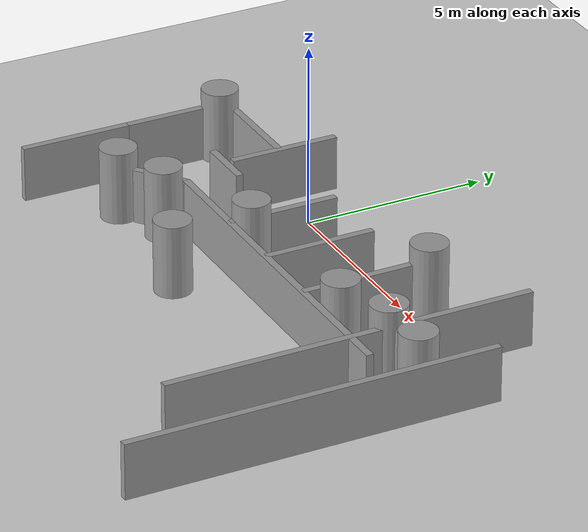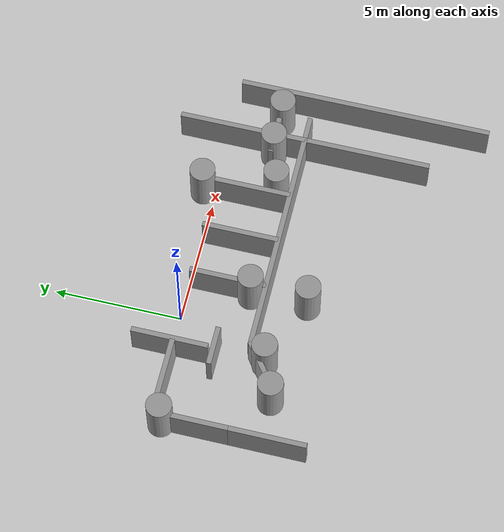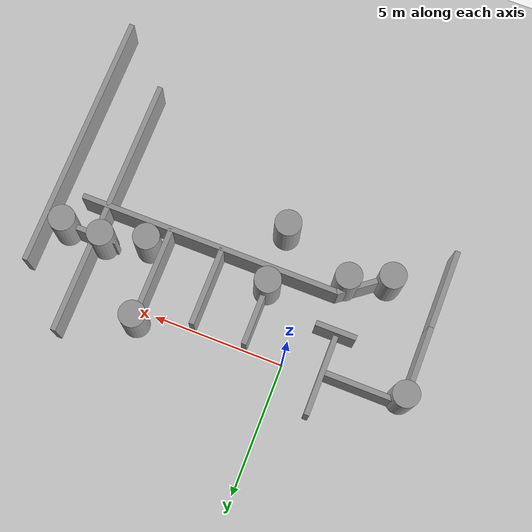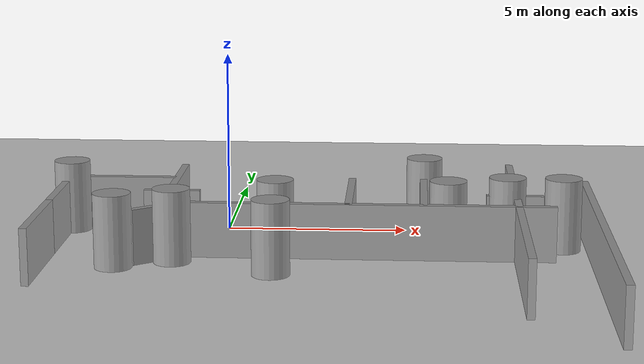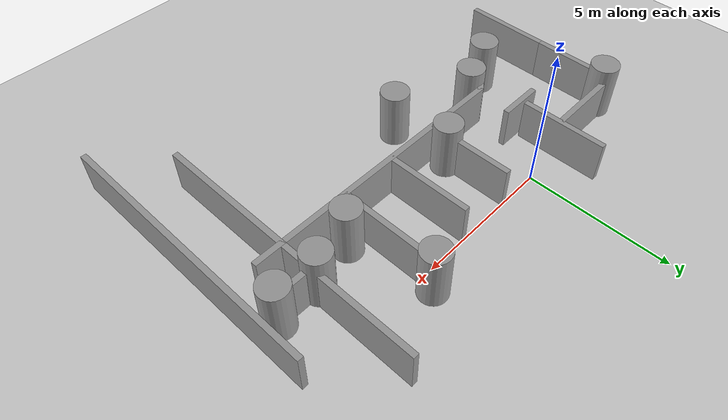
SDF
<sdf version="1.7">
 <world name="default">
  <model name="ground_plane">
   <static>1</static>
   <link name="link">
    <collision name="collision">
     <geometry><plane><normal>0 0 1</normal><size>100 100</size></plane></geometry>
     <surface><friction><ode><mu>100</mu><mu2>50</mu2></ode></friction></surface>
    </collision>
    <visual name="visual">
     <cast_shadows>0</cast_shadows>
     <geometry><plane><normal>0 0 1</normal><size>100 100</size></plane></geometry>
     <material>
      <script><uri>file://media/materials/scripts/gazebo.material</uri><name>Gazebo/Grey</name></script>
     </material>
    </visual>
   </link>
  </model>
  <model name="wall_10x3_clone_3_clone_0">
   <link name="link">
    <inertial>
     <mass>1</mass>
     <inertia>
      <ixx>0.166667</ixx>
      <ixy>0</ixy>
      <ixz>0</ixz>
      <iyy>0.166667</iyy>
      <iyz>0</iyz>
      <izz>0.166667</izz>
     </inertia>
    </inertial>
    <visual name="visual">
     <geometry><box><size>10 0.2 1.5</size></box></geometry>
     <material>
      <script><name>Gazebo/Grey</name><uri>file://media/materials/scripts/gazebo.material</uri></script>
      <shader type="pixel"><normal_map>__default__</normal_map></shader>
      <ambient>0.3 0.3 0.3 1</ambient>
      <diffuse>0.7 0.7 0.7 1</diffuse>
      <specular>0.01 0.01 0.01 1</specular>
      <emissive>0 0 0 1</emissive>
     </material>
    </visual>
    <collision name="collision">
     <geometry><box><size>10 0.2 1.5</size></box></geometry>
     <surface>
      <friction>
       <ode><mu>1</mu><mu2>1</mu2><fdir1>0 0 0</fdir1><slip1>0</slip1><slip2>0</slip2></ode>
       <torsional>
        <coefficient>1</coefficient>
        <patch_radius>0</patch_radius>
        <surface_radius>0</surface_radius>
        <use_patch_radius>1</use_patch_radius>
        <ode><slip>0</slip></ode>
       </torsional>
      </friction>
      <bounce><restitution_coefficient>0</restitution_coefficient><threshold>1e+06</threshold></bounce>
      <contact>
       <collide_without_contact>0</collide_without_contact>
       <collide_without_contact_bitmask>1</collide_without_contact_bitmask>
       <collide_bitmask>1</collide_bitmask>
       <ode>
        <soft_cfm>0</soft_cfm>
        <soft_erp>0.2</soft_erp>
        <kp>1e+13</kp>
        <kd>1</kd>
        <max_vel>0.01</max_vel>
        <min_depth>0</min_depth>
       </ode>
       <bullet>
        <split_impulse>1</split_impulse>
        <split_impulse_penetration_threshold>-0.01</split_impulse_penetration_threshold>
        <soft_cfm>0</soft_cfm>
        <soft_erp>0.2</soft_erp>
        <kp>1e+13</kp>
        <kd>1</kd>
       </bullet>
      </contact>
     </surface>
    </collision>
   </link>
   <static>1</static>
   <pose>10 -5 0.75 0 -0 1.5708</pose>
  </model>
  <model name="wall_10x3_clone_2_clone_1">
   <link name="link">
    <inertial>
     <mass>1</mass>
     <inertia>
      <ixx>0.166667</ixx>
      <ixy>0</ixy>
      <ixz>0</ixz>
      <iyy>0.166667</iyy>
      <iyz>0</iyz>
      <izz>0.166667</izz>
     </inertia>
    </inertial>
    <visual name="visual">
     <geometry><box><size>10 0.2 1.5</size></box></geometry>
     <material>
      <script><name>Gazebo/Grey</name><uri>file://media/materials/scripts/gazebo.material</uri></script>
      <shader type="pixel"><normal_map>__default__</normal_map></shader>
      <ambient>0.3 0.3 0.3 1</ambient>
      <diffuse>0.7 0.7 0.7 1</diffuse>
      <specular>0.01 0.01 0.01 1</specular>
      <emissive>0 0 0 1</emissive>
     </material>
    </visual>
    <collision name="collision">
     <geometry><box><size>10 0.2 1.5</size></box></geometry>
     <surface>
      <friction>
       <ode><mu>1</mu><mu2>1</mu2><fdir1>0 0 0</fdir1><slip1>0</slip1><slip2>0</slip2></ode>
       <torsional>
        <coefficient>1</coefficient>
        <patch_radius>0</patch_radius>
        <surface_radius>0</surface_radius>
        <use_patch_radius>1</use_patch_radius>
        <ode><slip>0</slip></ode>
       </torsional>
      </friction>
      <bounce><restitution_coefficient>0</restitution_coefficient><threshold>1e+06</threshold></bounce>
      <contact>
       <collide_without_contact>0</collide_without_contact>
       <collide_without_contact_bitmask>1</collide_without_contact_bitmask>
       <collide_bitmask>1</collide_bitmask>
       <ode>
        <soft_cfm>0</soft_cfm>
        <soft_erp>0.2</soft_erp>
        <kp>1e+13</kp>
        <kd>1</kd>
        <max_vel>0.01</max_vel>
        <min_depth>0</min_depth>
       </ode>
       <bullet>
        <split_impulse>1</split_impulse>
        <split_impulse_penetration_threshold>-0.01</split_impulse_penetration_threshold>
        <soft_cfm>0</soft_cfm>
        <soft_erp>0.2</soft_erp>
        <kp>1e+13</kp>
        <kd>1</kd>
       </bullet>
      </contact>
     </surface>
    </collision>
   </link>
   <static>1</static>
   <pose>4 -3 0.75 0 -0 0</pose>
  </model>
  <model name="wall_10x3_clone_3_clone_0_clone">
   <link name="link">
    <inertial>
     <mass>1</mass>
     <inertia>
      <ixx>0.166667</ixx>
      <ixy>0</ixy>
      <ixz>0</ixz>
      <iyy>0.166667</iyy>
      <iyz>0</iyz>
      <izz>0.166667</izz>
     </inertia>
    </inertial>
    <visual name="visual">
     <geometry><box><size>10 0.2 1.5</size></box></geometry>
     <material>
      <script><name>Gazebo/Grey</name><uri>file://media/materials/scripts/gazebo.material</uri></script>
      <shader type="pixel"><normal_map>__default__</normal_map></shader>
      <ambient>0.3 0.3 0.3 1</ambient>
      <diffuse>0.7 0.7 0.7 1</diffuse>
      <specular>0.01 0.01 0.01 1</specular>
      <emissive>0 0 0 1</emissive>
     </material>
    </visual>
    <collision name="collision">
     <geometry><box><size>10 0.2 1.5</size></box></geometry>
     <surface>
      <friction>
       <ode><mu>1</mu><mu2>1</mu2><fdir1>0 0 0</fdir1><slip1>0</slip1><slip2>0</slip2></ode>
       <torsional>
        <coefficient>1</coefficient>
        <patch_radius>0</patch_radius>
        <surface_radius>0</surface_radius>
        <use_patch_radius>1</use_patch_radius>
        <ode><slip>0</slip></ode>
       </torsional>
      </friction>
      <bounce><restitution_coefficient>0</restitution_coefficient><threshold>1e+06</threshold></bounce>
      <contact>
       <collide_without_contact>0</collide_without_contact>
       <collide_without_contact_bitmask>1</collide_without_contact_bitmask>
       <collide_bitmask>1</collide_bitmask>
       <ode>
        <soft_cfm>0</soft_cfm>
        <soft_erp>0.2</soft_erp>
        <kp>1e+13</kp>
        <kd>1</kd>
        <max_vel>0.01</max_vel>
        <min_depth>0</min_depth>
       </ode>
       <bullet>
        <split_impulse>1</split_impulse>
        <split_impulse_penetration_threshold>-0.01</split_impulse_penetration_threshold>
        <soft_cfm>0</soft_cfm>
        <soft_erp>0.2</soft_erp>
        <kp>1e+13</kp>
        <kd>1</kd>
       </bullet>
      </contact>
     </surface>
    </collision>
   </link>
   <static>1</static>
   <pose>8 -3 0.75 0 -0 1.5708</pose>
  </model>
  <model name="wall_10x3_clone_3_clone_0_clone_clone_clone_clone_2">
   <link name="link">
    <inertial>
     <mass>1</mass>
     <inertia>
      <ixx>0.166667</ixx>
      <ixy>0</ixy>
      <ixz>0</ixz>
      <iyy>0.166667</iyy>
      <iyz>0</iyz>
      <izz>0.166667</izz>
     </inertia>
    </inertial>
    <visual name="visual">
     <geometry><box><size>3 0.2 1.5</size></box></geometry>
     <material>
      <script><name>Gazebo/Grey</name><uri>file://media/materials/scripts/gazebo.material</uri></script>
      <shader type="pixel"><normal_map>__default__</normal_map></shader>
      <ambient>0.3 0.3 0.3 1</ambient>
      <diffuse>0.7 0.7 0.7 1</diffuse>
      <specular>0.01 0.01 0.01 1</specular>
      <emissive>0 0 0 1</emissive>
     </material>
    </visual>
    <collision name="collision">
     <geometry><box><size>3 0.2 1.5</size></box></geometry>
     <surface>
      <friction>
       <ode><mu>1</mu><mu2>1</mu2><fdir1>0 0 0</fdir1><slip1>0</slip1><slip2>0</slip2></ode>
       <torsional>
        <coefficient>1</coefficient>
        <patch_radius>0</patch_radius>
        <surface_radius>0</surface_radius>
        <use_patch_radius>1</use_patch_radius>
        <ode><slip>0</slip></ode>
       </torsional>
      </friction>
      <bounce><restitution_coefficient>0</restitution_coefficient><threshold>1e+06</threshold></bounce>
      <contact>
       <collide_without_contact>0</collide_without_contact>
       <collide_without_contact_bitmask>1</collide_without_contact_bitmask>
       <collide_bitmask>1</collide_bitmask>
       <ode>
        <soft_cfm>0</soft_cfm>
        <soft_erp>0.2</soft_erp>
        <kp>1e+13</kp>
        <kd>1</kd>
        <max_vel>0.01</max_vel>
        <min_depth>0</min_depth>
       </ode>
       <bullet>
        <split_impulse>1</split_impulse>
        <split_impulse_penetration_threshold>-0.01</split_impulse_penetration_threshold>
        <soft_cfm>0</soft_cfm>
        <soft_erp>0.2</soft_erp>
        <kp>1e+13</kp>
        <kd>1</kd>
       </bullet>
      </contact>
     </surface>
    </collision>
   </link>
   <static>1</static>
   <pose>5.5 -1.5 0.75 0 -0 1.5708</pose>
  </model>
  <model name="wall_10x3_clone_3_clone_0_clone_clone_clone_clone_3">
   <link name="link">
    <inertial>
     <mass>1</mass>
     <inertia>
      <ixx>0.166667</ixx>
      <ixy>0</ixy>
      <ixz>0</ixz>
      <iyy>0.166667</iyy>
      <iyz>0</iyz>
      <izz>0.166667</izz>
     </inertia>
    </inertial>
    <visual name="visual">
     <geometry><box><size>3 0.2 1.5</size></box></geometry>
     <material>
      <script><name>Gazebo/Grey</name><uri>file://media/materials/scripts/gazebo.material</uri></script>
      <shader type="pixel"><normal_map>__default__</normal_map></shader>
      <ambient>0.3 0.3 0.3 1</ambient>
      <diffuse>0.7 0.7 0.7 1</diffuse>
      <specular>0.01 0.01 0.01 1</specular>
      <emissive>0 0 0 1</emissive>
     </material>
    </visual>
    <collision name="collision">
     <geometry><box><size>3 0.2 1.5</size></box></geometry>
     <surface>
      <friction>
       <ode><mu>1</mu><mu2>1</mu2><fdir1>0 0 0</fdir1><slip1>0</slip1><slip2>0</slip2></ode>
       <torsional>
        <coefficient>1</coefficient>
        <patch_radius>0</patch_radius>
        <surface_radius>0</surface_radius>
        <use_patch_radius>1</use_patch_radius>
        <ode><slip>0</slip></ode>
       </torsional>
      </friction>
      <bounce><restitution_coefficient>0</restitution_coefficient><threshold>1e+06</threshold></bounce>
      <contact>
       <collide_without_contact>0</collide_without_contact>
       <collide_without_contact_bitmask>1</collide_without_contact_bitmask>
       <collide_bitmask>1</collide_bitmask>
       <ode>
        <soft_cfm>0</soft_cfm>
        <soft_erp>0.2</soft_erp>
        <kp>1e+13</kp>
        <kd>1</kd>
        <max_vel>0.01</max_vel>
        <min_depth>0</min_depth>
       </ode>
       <bullet>
        <split_impulse>1</split_impulse>
        <split_impulse_penetration_threshold>-0.01</split_impulse_penetration_threshold>
        <soft_cfm>0</soft_cfm>
        <soft_erp>0.2</soft_erp>
        <kp>1e+13</kp>
        <kd>1</kd>
       </bullet>
      </contact>
     </surface>
    </collision>
   </link>
   <static>1</static>
   <pose>3.5 -1.5 0.75 0 -0 1.5708</pose>
  </model>
  <model name="wall_10x3_clone_3_clone_0_clone_clone_clone_clone_6_clone_6">
   <link name="link">
    <inertial>
     <mass>1</mass>
     <inertia>
      <ixx>0.166667</ixx>
      <ixy>0</ixy>
      <ixz>0</ixz>
      <iyy>0.166667</iyy>
      <iyz>0</iyz>
      <izz>0.166667</izz>
     </inertia>
    </inertial>
    <visual name="visual">
     <geometry><box><size>3 0.2 1.5</size></box></geometry>
     <material>
      <script><name>Gazebo/Grey</name><uri>file://media/materials/scripts/gazebo.material</uri></script>
      <shader type="pixel"><normal_map>__default__</normal_map></shader>
      <ambient>0.3 0.3 0.3 1</ambient>
      <diffuse>0.7 0.7 0.7 1</diffuse>
      <specular>0.01 0.01 0.01 1</specular>
      <emissive>0 0 0 1</emissive>
     </material>
    </visual>
    <collision name="collision">
     <geometry><box><size>3 0.2 1.5</size></box></geometry>
     <surface>
      <friction>
       <ode><mu>1</mu><mu2>1</mu2><fdir1>0 0 0</fdir1><slip1>0</slip1><slip2>0</slip2></ode>
       <torsional>
        <coefficient>1</coefficient>
        <patch_radius>0</patch_radius>
        <surface_radius>0</surface_radius>
        <use_patch_radius>1</use_patch_radius>
        <ode><slip>0</slip></ode>
       </torsional>
      </friction>
      <bounce><restitution_coefficient>0</restitution_coefficient><threshold>1e+06</threshold></bounce>
      <contact>
       <collide_without_contact>0</collide_without_contact>
       <collide_without_contact_bitmask>1</collide_without_contact_bitmask>
       <collide_bitmask>1</collide_bitmask>
       <ode>
        <soft_cfm>0</soft_cfm>
        <soft_erp>0.2</soft_erp>
        <kp>1e+13</kp>
        <kd>1</kd>
        <max_vel>0.01</max_vel>
        <min_depth>0</min_depth>
       </ode>
       <bullet>
        <split_impulse>1</split_impulse>
        <split_impulse_penetration_threshold>-0.01</split_impulse_penetration_threshold>
        <soft_cfm>0</soft_cfm>
        <soft_erp>0.2</soft_erp>
        <kp>1e+13</kp>
        <kd>1</kd>
       </bullet>
      </contact>
     </surface>
    </collision>
   </link>
   <static>1</static>
   <pose>1.5 -1.5 0.75 0 -0 1.5708</pose>
  </model>
  <model name="wall_10x3_clone_3_clone_0_clone_clone_clone_clone_6_clone_7">
   <link name="link">
    <inertial>
     <mass>1</mass>
     <inertia>
      <ixx>0.166667</ixx>
      <ixy>0</ixy>
      <ixz>0</ixz>
      <iyy>0.166667</iyy>
      <iyz>0</iyz>
      <izz>0.166667</izz>
     </inertia>
    </inertial>
    <visual name="visual">
     <geometry><box><size>3 0.2 1.5</size></box></geometry>
     <material>
      <script><name>Gazebo/Grey</name><uri>file://media/materials/scripts/gazebo.material</uri></script>
      <shader type="pixel"><normal_map>__default__</normal_map></shader>
      <ambient>0.3 0.3 0.3 1</ambient>
      <diffuse>0.7 0.7 0.7 1</diffuse>
      <specular>0.01 0.01 0.01 1</specular>
      <emissive>0 0 0 1</emissive>
     </material>
    </visual>
    <collision name="collision">
     <geometry><box><size>3 0.2 1.5</size></box></geometry>
     <surface>
      <friction>
       <ode><mu>1</mu><mu2>1</mu2><fdir1>0 0 0</fdir1><slip1>0</slip1><slip2>0</slip2></ode>
       <torsional>
        <coefficient>1</coefficient>
        <patch_radius>0</patch_radius>
        <surface_radius>0</surface_radius>
        <use_patch_radius>1</use_patch_radius>
        <ode><slip>0</slip></ode>
       </torsional>
      </friction>
      <bounce><restitution_coefficient>0</restitution_coefficient><threshold>1e+06</threshold></bounce>
      <contact>
       <collide_without_contact>0</collide_without_contact>
       <collide_without_contact_bitmask>1</collide_without_contact_bitmask>
       <collide_bitmask>1</collide_bitmask>
       <ode>
        <soft_cfm>0</soft_cfm>
        <soft_erp>0.2</soft_erp>
        <kp>1e+13</kp>
        <kd>1</kd>
        <max_vel>0.01</max_vel>
        <min_depth>0</min_depth>
       </ode>
       <bullet>
        <split_impulse>1</split_impulse>
        <split_impulse_penetration_threshold>-0.01</split_impulse_penetration_threshold>
        <soft_cfm>0</soft_cfm>
        <soft_erp>0.2</soft_erp>
        <kp>1e+13</kp>
        <kd>1</kd>
       </bullet>
      </contact>
     </surface>
    </collision>
   </link>
   <static>1</static>
   <pose>-4.5 -4.5 0.75 0 -0 1.5708</pose>
  </model>
  <model name="wall_10x3_clone_3_clone_0_clone_clone_clone_clone_6_clone_8">
   <link name="link">
    <inertial>
     <mass>1</mass>
     <inertia>
      <ixx>0.166667</ixx>
      <ixy>0</ixy>
      <ixz>0</ixz>
      <iyy>0.166667</iyy>
      <iyz>0</iyz>
      <izz>0.166667</izz>
     </inertia>
    </inertial>
    <visual name="visual">
     <geometry><box><size>3 0.2 1.5</size></box></geometry>
     <material>
      <script><name>Gazebo/Grey</name><uri>file://media/materials/scripts/gazebo.material</uri></script>
      <shader type="pixel"><normal_map>__default__</normal_map></shader>
      <ambient>0.3 0.3 0.3 1</ambient>
      <diffuse>0.7 0.7 0.7 1</diffuse>
      <specular>0.01 0.01 0.01 1</specular>
      <emissive>0 0 0 1</emissive>
     </material>
    </visual>
    <collision name="collision">
     <geometry><box><size>3 0.2 1.5</size></box></geometry>
     <surface>
      <friction>
       <ode><mu>1</mu><mu2>1</mu2><fdir1>0 0 0</fdir1><slip1>0</slip1><slip2>0</slip2></ode>
       <torsional>
        <coefficient>1</coefficient>
        <patch_radius>0</patch_radius>
        <surface_radius>0</surface_radius>
        <use_patch_radius>1</use_patch_radius>
        <ode><slip>0</slip></ode>
       </torsional>
      </friction>
      <bounce><restitution_coefficient>0</restitution_coefficient><threshold>1e+06</threshold></bounce>
      <contact>
       <collide_without_contact>0</collide_without_contact>
       <collide_without_contact_bitmask>1</collide_without_contact_bitmask>
       <collide_bitmask>1</collide_bitmask>
       <ode>
        <soft_cfm>0</soft_cfm>
        <soft_erp>0.2</soft_erp>
        <kp>1e+13</kp>
        <kd>1</kd>
        <max_vel>0.01</max_vel>
        <min_depth>0</min_depth>
       </ode>
       <bullet>
        <split_impulse>1</split_impulse>
        <split_impulse_penetration_threshold>-0.01</split_impulse_penetration_threshold>
        <soft_cfm>0</soft_cfm>
        <soft_erp>0.2</soft_erp>
        <kp>1e+13</kp>
        <kd>1</kd>
       </bullet>
      </contact>
     </surface>
    </collision>
   </link>
   <static>1</static>
   <pose>-4.5 -1.5 0.75 0 -0 1.5708</pose>
  </model>
  <model name="wall_10x3_clone_3_clone_0_clone_clone_clone_clone_clone_1">
   <link name="link">
    <inertial>
     <mass>1</mass>
     <inertia>
      <ixx>0.166667</ixx>
      <ixy>0</ixy>
      <ixz>0</ixz>
      <iyy>0.166667</iyy>
      <iyz>0</iyz>
      <izz>0.166667</izz>
     </inertia>
    </inertial>
    <visual name="visual">
     <geometry><box><size>3 0.2 1.5</size></box></geometry>
     <material>
      <script><name>Gazebo/Grey</name><uri>file://media/materials/scripts/gazebo.material</uri></script>
      <shader type="pixel"><normal_map>__default__</normal_map></shader>
      <ambient>0.3 0.3 0.3 1</ambient>
      <diffuse>0.7 0.7 0.7 1</diffuse>
      <specular>0.01 0.01 0.01 1</specular>
      <emissive>0 0 0 1</emissive>
     </material>
    </visual>
    <collision name="collision">
     <geometry><box><size>3 0.2 1.5</size></box></geometry>
     <surface>
      <friction>
       <ode><mu>1</mu><mu2>1</mu2><fdir1>0 0 0</fdir1><slip1>0</slip1><slip2>0</slip2></ode>
       <torsional>
        <coefficient>1</coefficient>
        <patch_radius>0</patch_radius>
        <surface_radius>0</surface_radius>
        <use_patch_radius>1</use_patch_radius>
        <ode><slip>0</slip></ode>
       </torsional>
      </friction>
      <bounce><restitution_coefficient>0</restitution_coefficient><threshold>1e+06</threshold></bounce>
      <contact>
       <collide_without_contact>0</collide_without_contact>
       <collide_without_contact_bitmask>1</collide_without_contact_bitmask>
       <collide_bitmask>1</collide_bitmask>
       <ode>
        <soft_cfm>0</soft_cfm>
        <soft_erp>0.2</soft_erp>
        <kp>1e+13</kp>
        <kd>1</kd>
        <max_vel>0.01</max_vel>
        <min_depth>0</min_depth>
       </ode>
       <bullet>
        <split_impulse>1</split_impulse>
        <split_impulse_penetration_threshold>-0.01</split_impulse_penetration_threshold>
        <soft_cfm>0</soft_cfm>
        <soft_erp>0.2</soft_erp>
        <kp>1e+13</kp>
        <kd>1</kd>
       </bullet>
      </contact>
     </surface>
    </collision>
   </link>
   <static>1</static>
   <pose>-3 -0.1 0.75 0 -0 0</pose>
  </model>
  <model name="wall_10x3_clone_3_clone_0_clone_clone_clone_clone_6_clone_4_clone">
   <link name="link">
    <inertial>
     <mass>1</mass>
     <inertia>
      <ixx>0.166667</ixx>
      <ixy>0</ixy>
      <ixz>0</ixz>
      <iyy>0.166667</iyy>
      <iyz>0</iyz>
      <izz>0.166667</izz>
     </inertia>
    </inertial>
    <visual name="visual">
     <geometry><box><size>3 0.2 1.5</size></box></geometry>
     <material>
      <script><name>Gazebo/Grey</name><uri>file://media/materials/scripts/gazebo.material</uri></script>
      <shader type="pixel"><normal_map>__default__</normal_map></shader>
      <ambient>0.3 0.3 0.3 1</ambient>
      <diffuse>0.7 0.7 0.7 1</diffuse>
      <specular>0.01 0.01 0.01 1</specular>
      <emissive>0 0 0 1</emissive>
     </material>
    </visual>
    <collision name="collision">
     <geometry><box><size>3 0.2 1.5</size></box></geometry>
     <surface>
      <friction>
       <ode><mu>1</mu><mu2>1</mu2><fdir1>0 0 0</fdir1><slip1>0</slip1><slip2>0</slip2></ode>
       <torsional>
        <coefficient>1</coefficient>
        <patch_radius>0</patch_radius>
        <surface_radius>0</surface_radius>
        <use_patch_radius>1</use_patch_radius>
        <ode><slip>0</slip></ode>
       </torsional>
      </friction>
      <bounce><restitution_coefficient>0</restitution_coefficient><threshold>1e+06</threshold></bounce>
      <contact>
       <collide_without_contact>0</collide_without_contact>
       <collide_without_contact_bitmask>1</collide_without_contact_bitmask>
       <collide_bitmask>1</collide_bitmask>
       <ode>
        <soft_cfm>0</soft_cfm>
        <soft_erp>0.2</soft_erp>
        <kp>1e+13</kp>
        <kd>1</kd>
        <max_vel>0.01</max_vel>
        <min_depth>0</min_depth>
       </ode>
       <bullet>
        <split_impulse>1</split_impulse>
        <split_impulse_penetration_threshold>-0.01</split_impulse_penetration_threshold>
        <soft_cfm>0</soft_cfm>
        <soft_erp>0.2</soft_erp>
        <kp>1e+13</kp>
        <kd>1</kd>
       </bullet>
      </contact>
     </surface>
    </collision>
   </link>
   <static>1</static>
   <pose>-1.44854 0.029457 0.75 0 -0 1.5708</pose>
  </model>
  <model name="wall_10x3_clone_3_clone_0_clone_clone_clone_clone_clone_0_clone_clone_clone_clone">
   <link name="link">
    <inertial>
     <mass>0.514545</mass>
     <inertia>
      <ixx>0.0981923</ixx>
      <ixy>0</ixy>
      <ixz>0</ixz>
      <iyy>0.198649</iyy>
      <iyz>0</iyz>
      <izz>0.103887</izz>
     </inertia>
    </inertial>
    <pose>0 0 0 0 0 -2.49068</pose>
    <visual name="visual">
     <geometry><box><size>1.54363 0.2 1.5</size></box></geometry>
     <material>
      <script><name>Gazebo/Grey</name><uri>file://media/materials/scripts/gazebo.material</uri></script>
      <shader type="pixel"><normal_map>__default__</normal_map></shader>
      <ambient>0.3 0.3 0.3 1</ambient>
      <diffuse>0.7 0.7 0.7 1</diffuse>
      <specular>0.01 0.01 0.01 1</specular>
      <emissive>0 0 0 1</emissive>
     </material>
    </visual>
    <collision name="collision">
     <geometry><box><size>1.54363 0.2 1.5</size></box></geometry>
     <surface>
      <friction>
       <ode><mu>1</mu><mu2>1</mu2><fdir1>0 0 0</fdir1><slip1>0</slip1><slip2>0</slip2></ode>
       <torsional>
        <coefficient>1</coefficient>
        <patch_radius>0</patch_radius>
        <surface_radius>0</surface_radius>
        <use_patch_radius>1</use_patch_radius>
        <ode><slip>0</slip></ode>
       </torsional>
      </friction>
      <bounce><restitution_coefficient>0</restitution_coefficient><threshold>1e+06</threshold></bounce>
      <contact>
       <collide_without_contact>0</collide_without_contact>
       <collide_without_contact_bitmask>1</collide_without_contact_bitmask>
       <collide_bitmask>1</collide_bitmask>
       <ode>
        <soft_cfm>0</soft_cfm>
        <soft_erp>0.2</soft_erp>
        <kp>1e+13</kp>
        <kd>1</kd>
        <max_vel>0.01</max_vel>
        <min_depth>0</min_depth>
       </ode>
       <bullet>
        <split_impulse>1</split_impulse>
        <split_impulse_penetration_threshold>-0.01</split_impulse_penetration_threshold>
        <soft_cfm>0</soft_cfm>
        <soft_erp>0.2</soft_erp>
        <kp>1e+13</kp>
        <kd>1</kd>
       </bullet>
      </contact>
     </surface>
    </collision>
   </link>
   <static>1</static>
   <pose>-1.53494 -3.44385 0.75 0 -0 0</pose>
  </model>
  <model name="wall_10x3_clone_3_clone_0_clone_clone_clone_clone_clone_0_clone_clone_4">
   <link name="link">
    <inertial>
     <mass>0.514545</mass>
     <inertia>
      <ixx>0.0981923</ixx>
      <ixy>0</ixy>
      <ixz>0</ixz>
      <iyy>0.198649</iyy>
      <iyz>0</iyz>
      <izz>0.103887</izz>
     </inertia>
    </inertial>
    <visual name="visual">
     <geometry><box><size>1.54363 0.2 1.5</size></box></geometry>
     <material>
      <script><name>Gazebo/Grey</name><uri>file://media/materials/scripts/gazebo.material</uri></script>
      <shader type="pixel"><normal_map>__default__</normal_map></shader>
      <ambient>0.3 0.3 0.3 1</ambient>
      <diffuse>0.7 0.7 0.7 1</diffuse>
      <specular>0.01 0.01 0.01 1</specular>
      <emissive>0 0 0 1</emissive>
     </material>
    </visual>
    <collision name="collision">
     <geometry><box><size>1.54363 0.2 1.5</size></box></geometry>
     <surface>
      <friction>
       <ode><mu>1</mu><mu2>1</mu2><fdir1>0 0 0</fdir1><slip1>0</slip1><slip2>0</slip2></ode>
       <torsional>
        <coefficient>1</coefficient>
        <patch_radius>0</patch_radius>
        <surface_radius>0</surface_radius>
        <use_patch_radius>1</use_patch_radius>
        <ode><slip>0</slip></ode>
       </torsional>
      </friction>
      <bounce><restitution_coefficient>0</restitution_coefficient><threshold>1e+06</threshold></bounce>
      <contact>
       <collide_without_contact>0</collide_without_contact>
       <collide_without_contact_bitmask>1</collide_without_contact_bitmask>
       <collide_bitmask>1</collide_bitmask>
       <ode>
        <soft_cfm>0</soft_cfm>
        <soft_erp>0.2</soft_erp>
        <kp>1e+13</kp>
        <kd>1</kd>
        <max_vel>0.01</max_vel>
        <min_depth>0</min_depth>
       </ode>
       <bullet>
        <split_impulse>1</split_impulse>
        <split_impulse_penetration_threshold>-0.01</split_impulse_penetration_threshold>
        <soft_cfm>0</soft_cfm>
        <soft_erp>0.2</soft_erp>
        <kp>1e+13</kp>
        <kd>1</kd>
       </bullet>
      </contact>
     </surface>
    </collision>
   </link>
   <static>1</static>
   <pose>7.96035 -1.81231 0.75 0 -0 0</pose>
  </model>
  <model name="wall_10x3_clone_3_clone_0_clone_clone_clone_clone_clone_0_clone_clone_5">
   <link name="link">
    <inertial>
     <mass>0.514545</mass>
     <inertia>
      <ixx>0.0981923</ixx>
      <ixy>0</ixy>
      <ixz>0</ixz>
      <iyy>0.198649</iyy>
      <iyz>0</iyz>
      <izz>0.103887</izz>
     </inertia>
    </inertial>
    <visual name="visual">
     <geometry><box><size>1.54363 0.2 1.5</size></box></geometry>
     <material>
      <script><name>Gazebo/Grey</name><uri>file://media/materials/scripts/gazebo.material</uri></script>
      <shader type="pixel"><normal_map>__default__</normal_map></shader>
      <ambient>0.3 0.3 0.3 1</ambient>
      <diffuse>0.7 0.7 0.7 1</diffuse>
      <specular>0.01 0.01 0.01 1</specular>
      <emissive>0 0 0 1</emissive>
     </material>
    </visual>
    <collision name="collision">
     <geometry><box><size>1.54363 0.2 1.5</size></box></geometry>
     <surface>
      <friction>
       <ode><mu>1</mu><mu2>1</mu2><fdir1>0 0 0</fdir1><slip1>0</slip1><slip2>0</slip2></ode>
       <torsional>
        <coefficient>1</coefficient>
        <patch_radius>0</patch_radius>
        <surface_radius>0</surface_radius>
        <use_patch_radius>1</use_patch_radius>
        <ode><slip>0</slip></ode>
       </torsional>
      </friction>
      <bounce><restitution_coefficient>0</restitution_coefficient><threshold>1e+06</threshold></bounce>
      <contact>
       <collide_without_contact>0</collide_without_contact>
       <collide_without_contact_bitmask>1</collide_without_contact_bitmask>
       <collide_bitmask>1</collide_bitmask>
       <ode>
        <soft_cfm>0</soft_cfm>
        <soft_erp>0.2</soft_erp>
        <kp>1e+13</kp>
        <kd>1</kd>
        <max_vel>0.01</max_vel>
        <min_depth>0</min_depth>
       </ode>
       <bullet>
        <split_impulse>1</split_impulse>
        <split_impulse_penetration_threshold>-0.01</split_impulse_penetration_threshold>
        <soft_cfm>0</soft_cfm>
        <soft_erp>0.2</soft_erp>
        <kp>1e+13</kp>
        <kd>1</kd>
       </bullet>
      </contact>
     </surface>
    </collision>
   </link>
   <static>1</static>
   <pose>-1.38504 -1.66315 0.75 0 -0 0</pose>
  </model>
  <model name="unit_cylinder_clone_1">
   <link name="link">
    <inertial>
     <mass>1</mass>
     <inertia><ixx>0.145833</ixx><ixy>0</ixy><ixz>0</ixz><iyy>0.145833</iyy><iyz>0</iyz><izz>0.125</izz></inertia>
    </inertial>
    <visual name="visual">
     <geometry><cylinder><radius>0.5</radius><length>2</length></cylinder></geometry>
     <material>
      <script><name>Gazebo/Grey</name><uri>file://media/materials/scripts/gazebo.material</uri></script>
      <shader type="pixel"><normal_map>__default__</normal_map></shader>
      <ambient>0.3 0.3 0.3 1</ambient>
      <diffuse>0.7 0.7 0.7 1</diffuse>
      <specular>0.01 0.01 0.01 1</specular>
      <emissive>0 0 0 1</emissive>
     </material>
    </visual>
    <collision name="collision">
     <geometry><cylinder><radius>0.5</radius><length>2</length></cylinder></geometry>
     <surface>
      <friction>
       <ode><mu>1</mu><mu2>1</mu2><fdir1>0 0 0</fdir1><slip1>0</slip1><slip2>0</slip2></ode>
       <torsional>
        <coefficient>1</coefficient>
        <patch_radius>0</patch_radius>
        <surface_radius>0</surface_radius>
        <use_patch_radius>1</use_patch_radius>
        <ode><slip>0</slip></ode>
       </torsional>
      </friction>
      <bounce><restitution_coefficient>0</restitution_coefficient><threshold>1e+06</threshold></bounce>
      <contact>
       <collide_without_contact>0</collide_without_contact>
       <collide_without_contact_bitmask>1</collide_without_contact_bitmask>
       <collide_bitmask>1</collide_bitmask>
       <ode>
        <soft_cfm>0</soft_cfm>
        <soft_erp>0.2</soft_erp>
        <kp>1e+13</kp>
        <kd>1</kd>
        <max_vel>0.01</max_vel>
        <min_depth>0</min_depth>
       </ode>
       <bullet>
        <split_impulse>1</split_impulse>
        <split_impulse_penetration_threshold>-0.01</split_impulse_penetration_threshold>
        <soft_cfm>0</soft_cfm>
        <soft_erp>0.2</soft_erp>
        <kp>1e+13</kp>
        <kd>1</kd>
       </bullet>
      </contact>
     </surface>
    </collision>
   </link>
   <static>0</static>
   <pose>1.57454 -4.62923 0.999996 0 -0 0.017035</pose>
  </model>
  <model name="unit_cylinder_clone_7">
   <link name="link">
    <inertial>
     <mass>1</mass>
     <inertia><ixx>0.145833</ixx><ixy>0</ixy><ixz>0</ixz><iyy>0.145833</iyy><iyz>0</iyz><izz>0.125</izz></inertia>
    </inertial>
    <visual name="visual">
     <geometry><cylinder><radius>0.5</radius><length>2</length></cylinder></geometry>
     <material>
      <script><name>Gazebo/Grey</name><uri>file://media/materials/scripts/gazebo.material</uri></script>
      <shader type="pixel"><normal_map>__default__</normal_map></shader>
      <ambient>0.3 0.3 0.3 1</ambient>
      <diffuse>0.7 0.7 0.7 1</diffuse>
      <specular>0.01 0.01 0.01 1</specular>
      <emissive>0 0 0 1</emissive>
     </material>
    </visual>
    <collision name="collision">
     <geometry><cylinder><radius>0.5</radius><length>2</length></cylinder></geometry>
     <surface>
      <friction>
       <ode><mu>1</mu><mu2>1</mu2><fdir1>0 0 0</fdir1><slip1>0</slip1><slip2>0</slip2></ode>
       <torsional>
        <coefficient>1</coefficient>
        <patch_radius>0</patch_radius>
        <surface_radius>0</surface_radius>
        <use_patch_radius>1</use_patch_radius>
        <ode><slip>0</slip></ode>
       </torsional>
      </friction>
      <bounce><restitution_coefficient>0</restitution_coefficient><threshold>1e+06</threshold></bounce>
      <contact>
       <collide_without_contact>0</collide_without_contact>
       <collide_without_contact_bitmask>1</collide_without_contact_bitmask>
       <collide_bitmask>1</collide_bitmask>
       <ode>
        <soft_cfm>0</soft_cfm>
        <soft_erp>0.2</soft_erp>
        <kp>1e+13</kp>
        <kd>1</kd>
        <max_vel>0.01</max_vel>
        <min_depth>0</min_depth>
       </ode>
       <bullet>
        <split_impulse>1</split_impulse>
        <split_impulse_penetration_threshold>-0.01</split_impulse_penetration_threshold>
        <soft_cfm>0</soft_cfm>
        <soft_erp>0.2</soft_erp>
        <kp>1e+13</kp>
        <kd>1</kd>
       </bullet>
      </contact>
     </surface>
    </collision>
   </link>
   <static>0</static>
   <pose>5.52662 0.505317 0.999996 0 -0 -0.001312</pose>
  </model>
  <model name="unit_cylinder_clone_8">
   <link name="link">
    <inertial>
     <mass>1</mass>
     <inertia><ixx>0.145833</ixx><ixy>0</ixy><ixz>0</ixz><iyy>0.145833</iyy><iyz>0</iyz><izz>0.125</izz></inertia>
    </inertial>
    <visual name="visual">
     <geometry><cylinder><radius>0.5</radius><length>2</length></cylinder></geometry>
     <material>
      <script><name>Gazebo/Grey</name><uri>file://media/materials/scripts/gazebo.material</uri></script>
      <shader type="pixel"><normal_map>__default__</normal_map></shader>
      <ambient>0.3 0.3 0.3 1</ambient>
      <diffuse>0.7 0.7 0.7 1</diffuse>
      <specular>0.01 0.01 0.01 1</specular>
      <emissive>0 0 0 1</emissive>
     </material>
    </visual>
    <collision name="collision">
     <geometry><cylinder><radius>0.5</radius><length>2</length></cylinder></geometry>
     <surface>
      <friction>
       <ode><mu>1</mu><mu2>1</mu2><fdir1>0 0 0</fdir1><slip1>0</slip1><slip2>0</slip2></ode>
       <torsional>
        <coefficient>1</coefficient>
        <patch_radius>0</patch_radius>
        <surface_radius>0</surface_radius>
        <use_patch_radius>1</use_patch_radius>
        <ode><slip>0</slip></ode>
       </torsional>
      </friction>
      <bounce><restitution_coefficient>0</restitution_coefficient><threshold>1e+06</threshold></bounce>
      <contact>
       <collide_without_contact>0</collide_without_contact>
       <collide_without_contact_bitmask>1</collide_without_contact_bitmask>
       <collide_bitmask>1</collide_bitmask>
       <ode>
        <soft_cfm>0</soft_cfm>
        <soft_erp>0.2</soft_erp>
        <kp>1e+13</kp>
        <kd>1</kd>
        <max_vel>0.01</max_vel>
        <min_depth>0</min_depth>
       </ode>
       <bullet>
        <split_impulse>1</split_impulse>
        <split_impulse_penetration_threshold>-0.01</split_impulse_penetration_threshold>
        <soft_cfm>0</soft_cfm>
        <soft_erp>0.2</soft_erp>
        <kp>1e+13</kp>
        <kd>1</kd>
       </bullet>
      </contact>
     </surface>
    </collision>
   </link>
   <static>0</static>
   <pose>-2.59181 -4.16126 0.999997 0 -0 -0.022184</pose>
  </model>
  <model name="unit_cylinder_clone_9">
   <link name="link">
    <inertial>
     <mass>1</mass>
     <inertia><ixx>0.145833</ixx><ixy>0</ixy><ixz>0</ixz><iyy>0.145833</iyy><iyz>0</iyz><izz>0.125</izz></inertia>
    </inertial>
    <visual name="visual">
     <geometry><cylinder><radius>0.5</radius><length>2</length></cylinder></geometry>
     <material>
      <script><name>Gazebo/Grey</name><uri>file://media/materials/scripts/gazebo.material</uri></script>
      <shader type="pixel"><normal_map>__default__</normal_map></shader>
      <ambient>0.3 0.3 0.3 1</ambient>
      <diffuse>0.7 0.7 0.7 1</diffuse>
      <specular>0.01 0.01 0.01 1</specular>
      <emissive>0 0 0 1</emissive>
     </material>
    </visual>
    <collision name="collision">
     <geometry><cylinder><radius>0.5</radius><length>2</length></cylinder></geometry>
     <surface>
      <friction>
       <ode><mu>1</mu><mu2>1</mu2><fdir1>0 0 0</fdir1><slip1>0</slip1><slip2>0</slip2></ode>
       <torsional>
        <coefficient>1</coefficient>
        <patch_radius>0</patch_radius>
        <surface_radius>0</surface_radius>
        <use_patch_radius>1</use_patch_radius>
        <ode><slip>0</slip></ode>
       </torsional>
      </friction>
      <bounce><restitution_coefficient>0</restitution_coefficient><threshold>1e+06</threshold></bounce>
      <contact>
       <collide_without_contact>0</collide_without_contact>
       <collide_without_contact_bitmask>1</collide_without_contact_bitmask>
       <collide_bitmask>1</collide_bitmask>
       <ode>
        <soft_cfm>0</soft_cfm>
        <soft_erp>0.2</soft_erp>
        <kp>1e+13</kp>
        <kd>1</kd>
        <max_vel>0.01</max_vel>
        <min_depth>0</min_depth>
       </ode>
       <bullet>
        <split_impulse>1</split_impulse>
        <split_impulse_penetration_threshold>-0.01</split_impulse_penetration_threshold>
        <soft_cfm>0</soft_cfm>
        <soft_erp>0.2</soft_erp>
        <kp>1e+13</kp>
        <kd>1</kd>
       </bullet>
      </contact>
     </surface>
    </collision>
   </link>
   <static>0</static>
   <pose>-1.12553 -3.58408 0.999991 0 0 -0.001326</pose>
  </model>
  <model name="unit_cylinder_clone_10">
   <link name="link">
    <inertial>
     <mass>1</mass>
     <inertia><ixx>0.145833</ixx><ixy>0</ixy><ixz>0</ixz><iyy>0.145833</iyy><iyz>0</iyz><izz>0.125</izz></inertia>
    </inertial>
    <visual name="visual">
     <geometry><cylinder><radius>0.5</radius><length>2</length></cylinder></geometry>
     <material>
      <script><name>Gazebo/Grey</name><uri>file://media/materials/scripts/gazebo.material</uri></script>
      <shader type="pixel"><normal_map>__default__</normal_map></shader>
      <ambient>0.3 0.3 0.3 1</ambient>
      <diffuse>0.7 0.7 0.7 1</diffuse>
      <specular>0.01 0.01 0.01 1</specular>
      <emissive>0 0 0 1</emissive>
     </material>
    </visual>
    <collision name="collision">
     <geometry><cylinder><radius>0.5</radius><length>2</length></cylinder></geometry>
     <surface>
      <friction>
       <ode><mu>1</mu><mu2>1</mu2><fdir1>0 0 0</fdir1><slip1>0</slip1><slip2>0</slip2></ode>
       <torsional>
        <coefficient>1</coefficient>
        <patch_radius>0</patch_radius>
        <surface_radius>0</surface_radius>
        <use_patch_radius>1</use_patch_radius>
        <ode><slip>0</slip></ode>
       </torsional>
      </friction>
      <bounce><restitution_coefficient>0</restitution_coefficient><threshold>1e+06</threshold></bounce>
      <contact>
       <collide_without_contact>0</collide_without_contact>
       <collide_without_contact_bitmask>1</collide_without_contact_bitmask>
       <collide_bitmask>1</collide_bitmask>
       <ode>
        <soft_cfm>0</soft_cfm>
        <soft_erp>0.2</soft_erp>
        <kp>1e+13</kp>
        <kd>1</kd>
        <max_vel>0.01</max_vel>
        <min_depth>0</min_depth>
       </ode>
       <bullet>
        <split_impulse>1</split_impulse>
        <split_impulse_penetration_threshold>-0.01</split_impulse_penetration_threshold>
        <soft_cfm>0</soft_cfm>
        <soft_erp>0.2</soft_erp>
        <kp>1e+13</kp>
        <kd>1</kd>
       </bullet>
      </contact>
     </surface>
    </collision>
   </link>
   <static>0</static>
   <pose>1.51149 -2.39698 0.999994 0 0 -0.000808</pose>
  </model>
  <model name="unit_cylinder_clone_11">
   <link name="link">
    <inertial>
     <mass>1</mass>
     <inertia><ixx>0.145833</ixx><ixy>0</ixy><ixz>0</ixz><iyy>0.145833</iyy><iyz>0</iyz><izz>0.125</izz></inertia>
    </inertial>
    <visual name="visual">
     <geometry><cylinder><radius>0.5</radius><length>2</length></cylinder></geometry>
     <material>
      <script><name>Gazebo/Grey</name><uri>file://media/materials/scripts/gazebo.material</uri></script>
      <shader type="pixel"><normal_map>__default__</normal_map></shader>
      <ambient>0.3 0.3 0.3 1</ambient>
      <diffuse>0.7 0.7 0.7 1</diffuse>
      <specular>0.01 0.01 0.01 1</specular>
      <emissive>0 0 0 1</emissive>
     </material>
    </visual>
    <collision name="collision">
     <geometry><cylinder><radius>0.5</radius><length>2</length></cylinder></geometry>
     <surface>
      <friction>
       <ode><mu>1</mu><mu2>1</mu2><fdir1>0 0 0</fdir1><slip1>0</slip1><slip2>0</slip2></ode>
       <torsional>
        <coefficient>1</coefficient>
        <patch_radius>0</patch_radius>
        <surface_radius>0</surface_radius>
        <use_patch_radius>1</use_patch_radius>
        <ode><slip>0</slip></ode>
       </torsional>
      </friction>
      <bounce><restitution_coefficient>0</restitution_coefficient><threshold>1e+06</threshold></bounce>
      <contact>
       <collide_without_contact>0</collide_without_contact>
       <collide_without_contact_bitmask>1</collide_without_contact_bitmask>
       <collide_bitmask>1</collide_bitmask>
       <ode>
        <soft_cfm>0</soft_cfm>
        <soft_erp>0.2</soft_erp>
        <kp>1e+13</kp>
        <kd>1</kd>
        <max_vel>0.01</max_vel>
        <min_depth>0</min_depth>
       </ode>
       <bullet>
        <split_impulse>1</split_impulse>
        <split_impulse_penetration_threshold>-0.01</split_impulse_penetration_threshold>
        <soft_cfm>0</soft_cfm>
        <soft_erp>0.2</soft_erp>
        <kp>1e+13</kp>
        <kd>1</kd>
       </bullet>
      </contact>
     </surface>
    </collision>
   </link>
   <static>0</static>
   <pose>9.25434 -1.82812 0.999994 0 0 -0.010624</pose>
  </model>
  <model name="unit_cylinder_clone_12">
   <link name="link">
    <inertial>
     <mass>1</mass>
     <inertia><ixx>0.145833</ixx><ixy>0</ixy><ixz>0</ixz><iyy>0.145833</iyy><iyz>0</iyz><izz>0.125</izz></inertia>
    </inertial>
    <visual name="visual">
     <geometry><cylinder><radius>0.5</radius><length>2</length></cylinder></geometry>
     <material>
      <script><name>Gazebo/Grey</name><uri>file://media/materials/scripts/gazebo.material</uri></script>
      <shader type="pixel"><normal_map>__default__</normal_map></shader>
      <ambient>0.3 0.3 0.3 1</ambient>
      <diffuse>0.7 0.7 0.7 1</diffuse>
      <specular>0.01 0.01 0.01 1</specular>
      <emissive>0 0 0 1</emissive>
     </material>
    </visual>
    <collision name="collision">
     <geometry><cylinder><radius>0.5</radius><length>2</length></cylinder></geometry>
     <surface>
      <friction>
       <ode><mu>1</mu><mu2>1</mu2><fdir1>0 0 0</fdir1><slip1>0</slip1><slip2>0</slip2></ode>
       <torsional>
        <coefficient>1</coefficient>
        <patch_radius>0</patch_radius>
        <surface_radius>0</surface_radius>
        <use_patch_radius>1</use_patch_radius>
        <ode><slip>0</slip></ode>
       </torsional>
      </friction>
      <bounce><restitution_coefficient>0</restitution_coefficient><threshold>1e+06</threshold></bounce>
      <contact>
       <collide_without_contact>0</collide_without_contact>
       <collide_without_contact_bitmask>1</collide_without_contact_bitmask>
       <collide_bitmask>1</collide_bitmask>
       <ode>
        <soft_cfm>0</soft_cfm>
        <soft_erp>0.2</soft_erp>
        <kp>1e+13</kp>
        <kd>1</kd>
        <max_vel>0.01</max_vel>
        <min_depth>0</min_depth>
       </ode>
       <bullet>
        <split_impulse>1</split_impulse>
        <split_impulse_penetration_threshold>-0.01</split_impulse_penetration_threshold>
        <soft_cfm>0</soft_cfm>
        <soft_erp>0.2</soft_erp>
        <kp>1e+13</kp>
        <kd>1</kd>
       </bullet>
      </contact>
     </surface>
    </collision>
   </link>
   <static>0</static>
   <pose>7.75377 -1.82062 0.999995 0 -0 -0.039024</pose>
  </model>
  <model name="unit_cylinder_clone_13">
   <link name="link">
    <inertial>
     <mass>1</mass>
     <inertia><ixx>0.145833</ixx><ixy>0</ixy><ixz>0</ixz><iyy>0.145833</iyy><iyz>0</iyz><izz>0.125</izz></inertia>
    </inertial>
    <visual name="visual">
     <geometry><cylinder><radius>0.5</radius><length>2</length></cylinder></geometry>
     <material>
      <script><name>Gazebo/Grey</name><uri>file://media/materials/scripts/gazebo.material</uri></script>
      <shader type="pixel"><normal_map>__default__</normal_map></shader>
      <ambient>0.3 0.3 0.3 1</ambient>
      <diffuse>0.7 0.7 0.7 1</diffuse>
      <specular>0.01 0.01 0.01 1</specular>
      <emissive>0 0 0 1</emissive>
     </material>
    </visual>
    <collision name="collision">
     <geometry><cylinder><radius>0.5</radius><length>2</length></cylinder></geometry>
     <surface>
      <friction>
       <ode><mu>1</mu><mu2>1</mu2><fdir1>0 0 0</fdir1><slip1>0</slip1><slip2>0</slip2></ode>
       <torsional>
        <coefficient>1</coefficient>
        <patch_radius>0</patch_radius>
        <surface_radius>0</surface_radius>
        <use_patch_radius>1</use_patch_radius>
        <ode><slip>0</slip></ode>
       </torsional>
      </friction>
      <bounce><restitution_coefficient>0</restitution_coefficient><threshold>1e+06</threshold></bounce>
      <contact>
       <collide_without_contact>0</collide_without_contact>
       <collide_without_contact_bitmask>1</collide_without_contact_bitmask>
       <collide_bitmask>1</collide_bitmask>
       <ode>
        <soft_cfm>0</soft_cfm>
        <soft_erp>0.2</soft_erp>
        <kp>1e+13</kp>
        <kd>1</kd>
        <max_vel>0.01</max_vel>
        <min_depth>0</min_depth>
       </ode>
       <bullet>
        <split_impulse>1</split_impulse>
        <split_impulse_penetration_threshold>-0.01</split_impulse_penetration_threshold>
        <soft_cfm>0</soft_cfm>
        <soft_erp>0.2</soft_erp>
        <kp>1e+13</kp>
        <kd>1</kd>
       </bullet>
      </contact>
     </surface>
    </collision>
   </link>
   <static>0</static>
   <pose>6.14973 -2.29621 0.999998 0 -0 -0.026478</pose>
  </model>
  <model name="unit_cylinder_clone_21">
   <link name="link">
    <inertial>
     <mass>1</mass>
     <inertia><ixx>0.145833</ixx><ixy>0</ixy><ixz>0</ixz><iyy>0.145833</iyy><iyz>0</iyz><izz>0.125</izz></inertia>
    </inertial>
    <visual name="visual">
     <geometry><cylinder><radius>0.5</radius><length>2</length></cylinder></geometry>
     <material>
      <script><name>Gazebo/Grey</name><uri>file://media/materials/scripts/gazebo.material</uri></script>
      <shader type="pixel"><normal_map>__default__</normal_map></shader>
      <ambient>0.3 0.3 0.3 1</ambient>
      <diffuse>0.7 0.7 0.7 1</diffuse>
      <specular>0.01 0.01 0.01 1</specular>
      <emissive>0 0 0 1</emissive>
     </material>
    </visual>
    <collision name="collision">
     <geometry><cylinder><radius>0.5</radius><length>2</length></cylinder></geometry>
     <surface>
      <friction>
       <ode><mu>1</mu><mu2>1</mu2><fdir1>0 0 0</fdir1><slip1>0</slip1><slip2>0</slip2></ode>
       <torsional>
        <coefficient>1</coefficient>
        <patch_radius>0</patch_radius>
        <surface_radius>0</surface_radius>
        <use_patch_radius>1</use_patch_radius>
        <ode><slip>0</slip></ode>
       </torsional>
      </friction>
      <bounce><restitution_coefficient>0</restitution_coefficient><threshold>1e+06</threshold></bounce>
      <contact>
       <collide_without_contact>0</collide_without_contact>
       <collide_without_contact_bitmask>1</collide_without_contact_bitmask>
       <collide_bitmask>1</collide_bitmask>
       <ode>
        <soft_cfm>0</soft_cfm>
        <soft_erp>0.2</soft_erp>
        <kp>1e+13</kp>
        <kd>1</kd>
        <max_vel>0.01</max_vel>
        <min_depth>0</min_depth>
       </ode>
       <bullet>
        <split_impulse>1</split_impulse>
        <split_impulse_penetration_threshold>-0.01</split_impulse_penetration_threshold>
        <soft_cfm>0</soft_cfm>
        <soft_erp>0.2</soft_erp>
        <kp>1e+13</kp>
        <kd>1</kd>
       </bullet>
      </contact>
     </surface>
    </collision>
   </link>
   <static>0</static>
   <pose>-4.40512 -0.349543 0.999997 -0 -0 -7e-06</pose>
  </model>
 </world>
</sdf>
